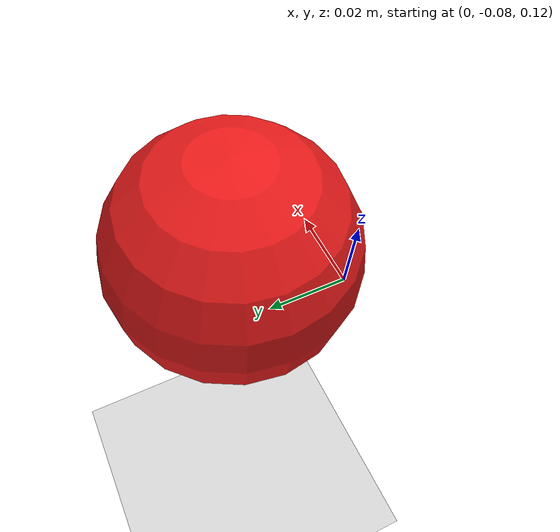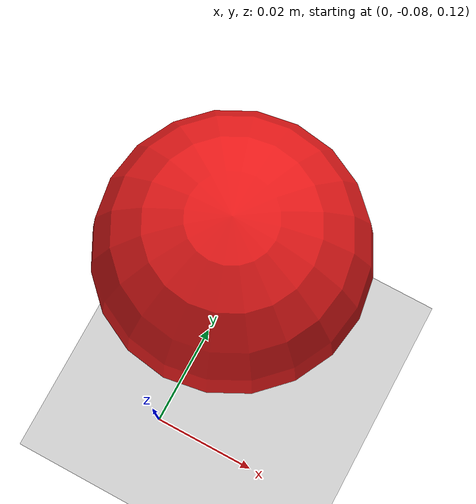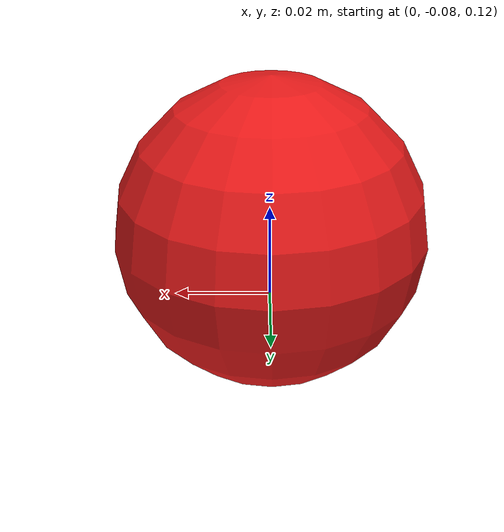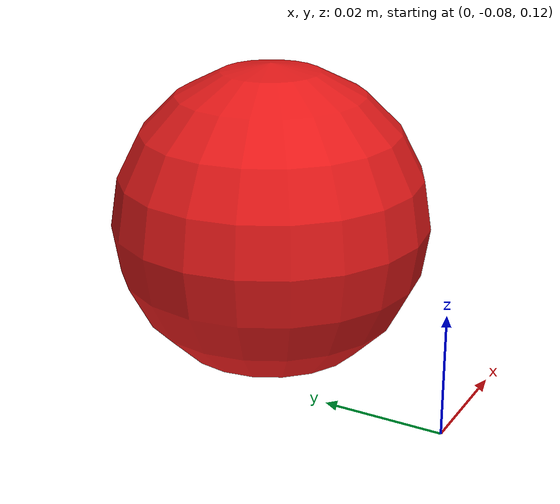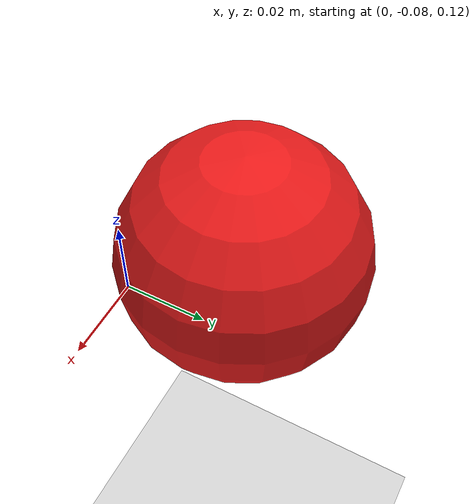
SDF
<?xml version="1.0" ?>
<sdf version="1.6">
  <world name="dexhand_grasping_world">
    <!-- A global light source -->
    <include>
      <uri>model://sun</uri>
    </include>
    <!-- A ground plane -->
    <include>
      <uri>model://ground_plane</uri>
    </include>

    <!-- Grasping target object: a small sphere (ball) placed right in front of the hand palm -->
    <model name="grasping_ball">
      <pose>0.0 -0.05 0.15 0 0 0</pose>
      <link name="link">
        <inertial>
          <mass>0.05</mass>
          <inertia>
            <ixx>0.000008</ixx>
            <ixy>0</ixy>
            <ixz>0</ixz>
            <iyy>0.000008</iyy>
            <iyz>0</iyz>
            <izz>0.000008</izz>
          </inertia>
        </inertial>
        <collision name="collision">
          <geometry>
            <sphere>
              <radius>0.025</radius>
            </sphere>
          </geometry>
          <surface>
            <friction>
              <ode>
                <mu>2.0</mu>
                <mu2>2.0</mu2>
              </ode>
            </friction>
            <contact>
              <ode>
                <kp>10000.0</kp>
                <kd>1.0</kd>
                <max_vel>1.0</max_vel>
                <min_depth>0.001</min_depth>
              </ode>
            </contact>
          </surface>
        </collision>
        <visual name="visual">
          <geometry>
            <sphere>
              <radius>0.025</radius>
            </sphere>
          </geometry>
          <material>
            <ambient>0.9 0.1 0.1 1</ambient>
            <diffuse>0.9 0.1 0.1 1</diffuse>
            <specular>0.5 0.5 0.5 1</specular>
          </material>
        </visual>
      </link>
    </model>

    <!-- Physics settings -->
    <physics name="default_physics" default="true" type="ode">
      <max_step_size>0.001</max_step_size>
      <real_time_factor>1</real_time_factor>
      <real_time_update_rate>1000</real_time_update_rate>
      <ode>
        <solver>
          <type>quick</type>
          <iters>50</iters>
          <sor>1.3</sor>
        </solver>
        <constraints>
          <cfm>0.0</cfm>
          <erp>0.2</erp>
          <contact_max_correcting_vel>100.0</contact_max_correcting_vel>
          <contact_surface_layer>0.001</contact_surface_layer>
        </constraints>
      </ode>
    </physics>
  </world>
</sdf>
